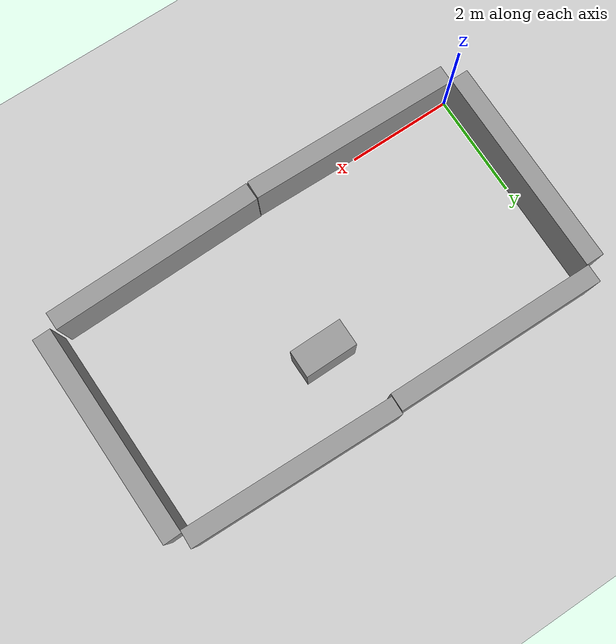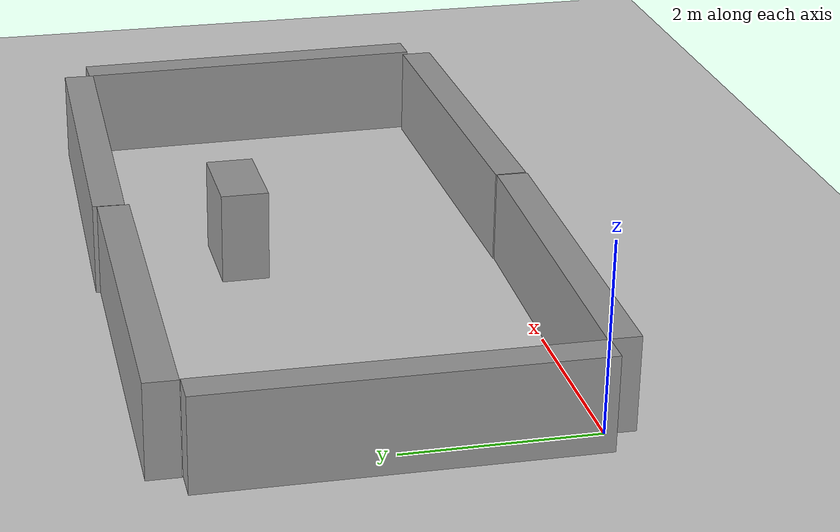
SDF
<sdf version="1.7">
 <world name="default">
  <light name="sun" type="directional">
   <pose>0 0 10 0 -0 0</pose>
   <diffuse>0.8 0.8 0.8 1</diffuse>
   <specular>0.2 0.2 0.2 1</specular>
   <attenuation>
    <range>1000</range>
    <constant>0.9</constant>
    <linear>0.01</linear>
    <quadratic>0.001</quadratic>
   </attenuation>
   <direction>-0.5 0.1 -0.9</direction>
   <spot><inner_angle>0</inner_angle><outer_angle>0</outer_angle><falloff>0</falloff></spot>
  </light>
  <model name="ground_plane">
   <static>1</static>
   <link name="link">
    <collision name="collision">
     <geometry><plane><normal>0 0 1</normal><size>100 100</size></plane></geometry>
     <surface><friction><ode><mu>100</mu><mu2>50</mu2></ode></friction></surface>
    </collision>
    <visual name="visual">
     <cast_shadows>0</cast_shadows>
     <geometry><plane><normal>0 0 1</normal><size>100 100</size></plane></geometry>
     <material>
      <script><uri>file://media/materials/scripts/gazebo.material</uri><name>Gazebo/Grey</name></script>
     </material>
    </visual>
   </link>
  </model>
  <gravity>0 0 -9.8</gravity>
  <magnetic_field>6e-06 2.3e-05 -4.2e-05</magnetic_field>
  <atmosphere type="adiabatic"/>
  <physics type="ode">
   <max_step_size>0.001</max_step_size>
   <real_time_factor>1</real_time_factor>
   <real_time_update_rate>1000</real_time_update_rate>
  </physics>
  <scene><ambient>0.4 0.4 0.4 1</ambient><background>0.7 0.7 0.7 1</background><shadows>1</shadows></scene>
  <spherical_coordinates>
   <surface_model>EARTH_WGS84</surface_model>
   <latitude_deg>0</latitude_deg>
   <longitude_deg>0</longitude_deg>
   <elevation>0</elevation>
   <heading_deg>0</heading_deg>
  </spherical_coordinates>
  <model name="unit_box">
   <pose>4.49939 2.73171 0.500002 6e-06 -0 0.006607</pose>
   <link name="link">
    <inertial>
     <mass>1</mass>
     <inertia>
      <ixx>0.166667</ixx>
      <ixy>0</ixy>
      <ixz>0</ixz>
      <iyy>0.166667</iyy>
      <iyz>0</iyz>
      <izz>0.166667</izz>
     </inertia>
    </inertial>
    <collision name="collision"><geometry><box><size>0.987737 0.51288 1</size></box></geometry></collision>
    <visual name="visual">
     <geometry><box><size>0.987737 0.51288 1</size></box></geometry>
     <material>
      <script><name>Gazebo/Grey</name><uri>file://media/materials/scripts/gazebo.material</uri></script>
     </material>
    </visual>
   </link>
  </model>
  <model name="unit_box_clone">
   <pose>6.01221 4.13374 0.499257 9e-06 -0.000373 -0.024847</pose>
   <link name="link">
    <inertial>
     <mass>1</mass>
     <inertia>
      <ixx>0.166667</ixx>
      <ixy>0</ixy>
      <ixz>0</ixz>
      <iyy>0.166667</iyy>
      <iyz>0</iyz>
      <izz>0.166667</izz>
     </inertia>
    </inertial>
    <collision name="collision"><geometry><box><size>4.00266 0.341391 1</size></box></geometry></collision>
    <visual name="visual">
     <geometry><box><size>4.00266 0.341391 1</size></box></geometry>
     <material>
      <script><name>Gazebo/Grey</name><uri>file://media/materials/scripts/gazebo.material</uri></script>
     </material>
    </visual>
   </link>
  </model>
  <model name="unit_box_clone_0">
   <pose>-0.165693 2.00172 0.499257 -9e-06 -0.000373 -1.57527</pose>
   <link name="link">
    <inertial>
     <mass>1</mass>
     <inertia>
      <ixx>0.166667</ixx>
      <ixy>0</ixy>
      <ixz>0</ixz>
      <iyy>0.166667</iyy>
      <iyz>0</iyz>
      <izz>0.166667</izz>
     </inertia>
    </inertial>
    <collision name="collision"><geometry><box><size>4.00266 0.341391 1</size></box></geometry></collision>
    <visual name="visual">
     <geometry><box><size>4.00266 0.341391 1</size></box></geometry>
     <material>
      <script><name>Gazebo/Grey</name><uri>file://media/materials/scripts/gazebo.material</uri></script>
     </material>
    </visual>
   </link>
  </model>
  <model name="unit_box_clone_1">
   <pose>2.00214 -0.183767 0.499257 9e-06 -0.000373 -0.018278</pose>
   <link name="link">
    <inertial>
     <mass>1</mass>
     <inertia>
      <ixx>0.166667</ixx>
      <ixy>0</ixy>
      <ixz>0</ixz>
      <iyy>0.166667</iyy>
      <iyz>0</iyz>
      <izz>0.166667</izz>
     </inertia>
    </inertial>
    <collision name="collision"><geometry><box><size>4.00266 0.341391 1</size></box></geometry></collision>
    <visual name="visual">
     <geometry><box><size>4.00266 0.341391 1</size></box></geometry>
     <material>
      <script><name>Gazebo/Grey</name><uri>file://media/materials/scripts/gazebo.material</uri></script>
     </material>
    </visual>
   </link>
  </model>
  <model name="unit_box_clone_0_clone">
   <pose>8.22811 1.96162 0.499257 9e-06 0.000373 -1.54711</pose>
   <link name="link">
    <inertial>
     <mass>1</mass>
     <inertia>
      <ixx>0.166667</ixx>
      <ixy>0</ixy>
      <ixz>0</ixz>
      <iyy>0.166667</iyy>
      <iyz>0</iyz>
      <izz>0.166667</izz>
     </inertia>
    </inertial>
    <collision name="collision"><geometry><box><size>4.00266 0.341391 1</size></box></geometry></collision>
    <visual name="visual">
     <geometry><box><size>4.00266 0.341391 1</size></box></geometry>
     <material>
      <script><name>Gazebo/Grey</name><uri>file://media/materials/scripts/gazebo.material</uri></script>
     </material>
    </visual>
   </link>
  </model>
  <model name="unit_box_clone_clone">
   <pose>6.02492 -0.17442 0.499257 -9e-06 -0.000373 0.018368</pose>
   <link name="link">
    <inertial>
     <mass>1</mass>
     <inertia>
      <ixx>0.166667</ixx>
      <ixy>0</ixy>
      <ixz>0</ixz>
      <iyy>0.166667</iyy>
      <iyz>0</iyz>
      <izz>0.166667</izz>
     </inertia>
    </inertial>
    <collision name="collision"><geometry><box><size>4.00266 0.341391 1</size></box></geometry></collision>
    <visual name="visual">
     <geometry><box><size>4.00266 0.341391 1</size></box></geometry>
     <material>
      <script><name>Gazebo/Grey</name><uri>file://media/materials/scripts/gazebo.material</uri></script>
     </material>
    </visual>
   </link>
  </model>
  <model name="unit_box_clone_clone_0">
   <pose>1.99859 4.15984 0.499257 9e-06 -0.000373 -0.011069</pose>
   <link name="link">
    <inertial>
     <mass>1</mass>
     <inertia>
      <ixx>0.166667</ixx>
      <ixy>0</ixy>
      <ixz>0</ixz>
      <iyy>0.166667</iyy>
      <iyz>0</iyz>
      <izz>0.166667</izz>
     </inertia>
    </inertial>
    <collision name="collision"><geometry><box><size>4.00266 0.341391 1</size></box></geometry></collision>
    <visual name="visual">
     <geometry><box><size>4.00266 0.341391 1</size></box></geometry>
     <material>
      <script><name>Gazebo/Grey</name><uri>file://media/materials/scripts/gazebo.material</uri></script>
     </material>
    </visual>
   </link>
  </model>
 </world>
</sdf>
